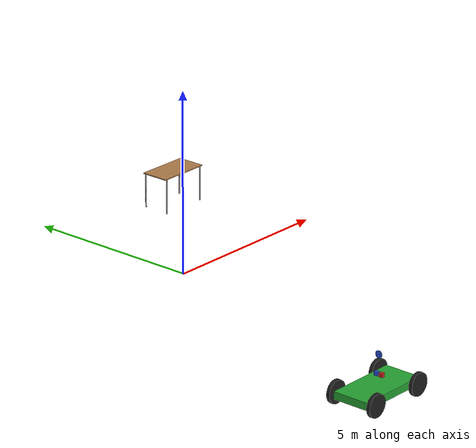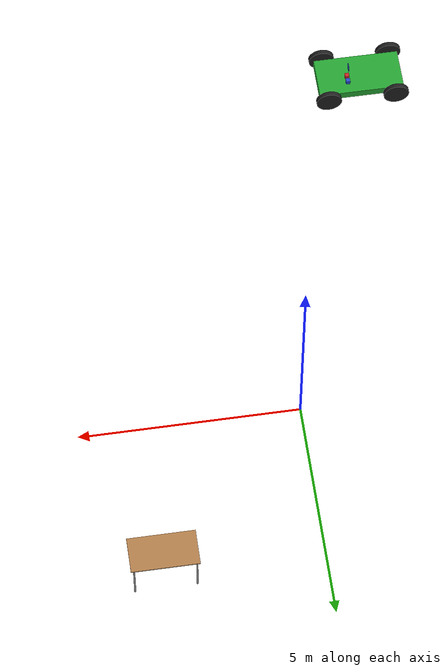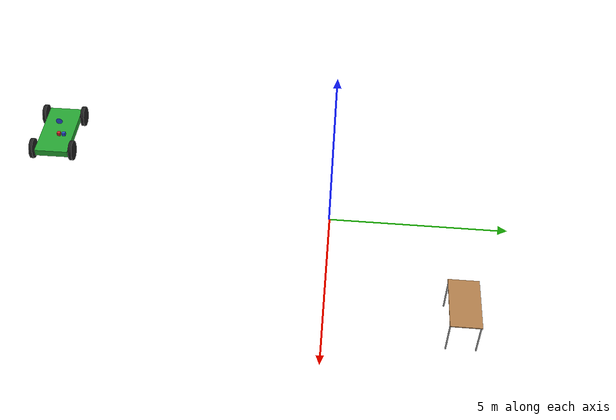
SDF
<sdf version="1.6">
 <world name="default">
  <light name="sun" type="directional">
   <pose>0 0 15 0 -0 0</pose>
   <diffuse>0.8 0.8 0.8 1</diffuse>
   <specular>0.2 0.2 0.2 1</specular>
   <attenuation>
    <range>1000</range>
    <constant>0.9</constant>
    <linear>0.01</linear>
    <quadratic>0.001</quadratic>
   </attenuation>
   <direction>-0.5 0.1 -0.9</direction>
  </light>
  <gravity>0 0 -9.8</gravity>
  <magnetic_field>6e-06 2.3e-05 -4.2e-05</magnetic_field>
  <atmosphere type="adiabatic"/>
  <physics name="default_physics" default="0" type="ode">
   <max_step_size>0.001</max_step_size>
   <real_time_factor>1</real_time_factor>
   <real_time_update_rate>1000</real_time_update_rate>
  </physics>
  <scene><ambient>0.4 0.4 0.4 1</ambient><background>0.7 0.7 0.7 1</background><shadows>1</shadows></scene>
  <spherical_coordinates>
   <surface_model>EARTH_WGS84</surface_model>
   <latitude_deg>0</latitude_deg>
   <longitude_deg>0</longitude_deg>
   <elevation>0</elevation>
   <heading_deg>0</heading_deg>
  </spherical_coordinates>
  <model name="car">
   <link name="chassis">
    <pose>0 0 0.3 0 -0 0</pose>
    <collision name="collision"><geometry><box><size>2 1 0.2</size></box></geometry></collision>
    <visual name="visual">
     <geometry><box><size>2 1 0.2</size></box></geometry>
     <material>
      <script><uri>file://media/materials/scripts/gazebo.material</uri><name>Gazebo/Green</name></script>
     </material>
    </visual>
    <inertial>
     <inertia><ixx>1</ixx><ixy>0</ixy><ixz>0</ixz><iyy>1</iyy><iyz>0</iyz><izz>1</izz></inertia>
     <mass>1</mass>
    </inertial>
   </link>
   <link name="front_left_wheel">
    <pose>0.8 0.6 0.3 -0 1.5707 1.5707</pose>
    <collision name="collision">
     <geometry><cylinder><radius>0.3</radius><length>0.1</length></cylinder></geometry>
    </collision>
    <visual name="visual">
     <geometry><cylinder><radius>0.3</radius><length>0.1</length></cylinder></geometry>
     <material>
      <script><uri>file://media/materials/scripts/gazebo.material</uri><name>Gazebo/Black</name></script>
     </material>
    </visual>
    <inertial>
     <inertia><ixx>1</ixx><ixy>0</ixy><ixz>0</ixz><iyy>1</iyy><iyz>0</iyz><izz>1</izz></inertia>
     <mass>1</mass>
    </inertial>
   </link>
   <link name="front_right_wheel">
    <pose>0.8 -0.6 0.3 -0 1.5707 1.5707</pose>
    <collision name="collision">
     <geometry><cylinder><radius>0.3</radius><length>0.1</length></cylinder></geometry>
    </collision>
    <visual name="visual">
     <geometry><cylinder><radius>0.3</radius><length>0.1</length></cylinder></geometry>
     <material>
      <script><uri>file://media/materials/scripts/gazebo.material</uri><name>Gazebo/Black</name></script>
     </material>
    </visual>
    <inertial>
     <inertia><ixx>1</ixx><ixy>0</ixy><ixz>0</ixz><iyy>1</iyy><iyz>0</iyz><izz>1</izz></inertia>
     <mass>1</mass>
    </inertial>
   </link>
   <link name="back_right_wheel">
    <pose>-0.8 -0.6 0.3 -0 1.5707 1.5707</pose>
    <collision name="collision">
     <geometry><cylinder><radius>0.3</radius><length>0.1</length></cylinder></geometry>
    </collision>
    <visual name="visual">
     <geometry><cylinder><radius>0.3</radius><length>0.1</length></cylinder></geometry>
     <material>
      <script><uri>file://media/materials/scripts/gazebo.material</uri><name>Gazebo/Black</name></script>
     </material>
    </visual>
    <inertial>
     <inertia><ixx>1</ixx><ixy>0</ixy><ixz>0</ixz><iyy>1</iyy><iyz>0</iyz><izz>1</izz></inertia>
     <mass>1</mass>
    </inertial>
   </link>
   <link name="back_left_wheel">
    <pose>-0.8 0.6 0.3 -0 1.5707 1.5707</pose>
    <collision name="collision">
     <geometry><cylinder><radius>0.3</radius><length>0.1</length></cylinder></geometry>
    </collision>
    <visual name="visual">
     <geometry><cylinder><radius>0.3</radius><length>0.1</length></cylinder></geometry>
     <material>
      <script><uri>file://media/materials/scripts/gazebo.material</uri><name>Gazebo/Black</name></script>
     </material>
    </visual>
    <inertial>
     <inertia><ixx>1</ixx><ixy>0</ixy><ixz>0</ixz><iyy>1</iyy><iyz>0</iyz><izz>1</izz></inertia>
     <mass>1</mass>
    </inertial>
   </link>
   <link name="gas_pedal">
    <pose>0.3 0.1 0.5 0 -0 0</pose>
    <collision name="collision"><geometry><box><size>0.1 0.1 0.1</size></box></geometry></collision>
    <visual name="visual">
     <geometry><box><size>0.1 0.1 0.1</size></box></geometry>
     <material>
      <script><uri>file://media/materials/scripts/gazebo.material</uri><name>Gazebo/Red</name></script>
     </material>
    </visual>
    <inertial>
     <inertia><ixx>1</ixx><ixy>0</ixy><ixz>0</ixz><iyy>1</iyy><iyz>0</iyz><izz>1</izz></inertia>
     <mass>1</mass>
    </inertial>
   </link>
   <link name="brake_pedal">
    <pose>0.3 0.25 0.5 0 -0 0</pose>
    <collision name="collision"><geometry><box><size>0.1 0.1 0.1</size></box></geometry></collision>
    <visual name="visual">
     <geometry><box><size>0.1 0.1 0.1</size></box></geometry>
     <material>
      <script><uri>file://media/materials/scripts/gazebo.material</uri><name>Gazebo/Blue</name></script>
     </material>
    </visual>
    <inertial>
     <inertia><ixx>1</ixx><ixy>0</ixy><ixz>0</ixz><iyy>1</iyy><iyz>0</iyz><izz>1</izz></inertia>
     <mass>1</mass>
    </inertial>
   </link>
   <link name="steering_wheel">
    <pose>0.3 0.2 1 0 1.5707 0</pose>
    <collision name="collision">
     <geometry><cylinder><radius>0.1</radius><length>0.01</length></cylinder></geometry>
    </collision>
    <visual name="visual">
     <geometry><cylinder><radius>0.1</radius><length>0.01</length></cylinder></geometry>
     <material>
      <script><uri>file://media/materials/scripts/gazebo.material</uri><name>Gazebo/Blue</name></script>
     </material>
    </visual>
    <inertial>
     <inertia><ixx>1</ixx><ixy>0</ixy><ixz>0</ixz><iyy>1</iyy><iyz>0</iyz><izz>1</izz></inertia>
     <mass>1</mass>
    </inertial>
   </link>
   <joint name="gas_joint" type="prismatic">
    <parent>chassis</parent>
    <child>gas_pedal</child>
    <axis>
     <xyz>1 0 0</xyz>
     <limit><lower>0</lower><upper>0.2</upper></limit>
     <use_parent_model_frame>1</use_parent_model_frame>
     <dynamics><spring_reference>0</spring_reference><spring_stiffness>0</spring_stiffness></dynamics>
    </axis>
   </joint>
   <joint name="brake_joint" type="prismatic">
    <parent>chassis</parent>
    <child>brake_pedal</child>
    <axis>
     <xyz>1 0 0</xyz>
     <limit><lower>0</lower><upper>0.2</upper></limit>
     <use_parent_model_frame>1</use_parent_model_frame>
     <dynamics><spring_reference>0</spring_reference><spring_stiffness>0</spring_stiffness></dynamics>
    </axis>
   </joint>
   <joint name="steering_joint" type="revolute">
    <parent>chassis</parent>
    <child>steering_wheel</child>
    <axis>
     <xyz>1 0 0</xyz>
     <limit><lower>-7.853</lower><upper>7.853</upper></limit>
     <use_parent_model_frame>1</use_parent_model_frame>
     <dynamics><spring_reference>0</spring_reference><spring_stiffness>0</spring_stiffness></dynamics>
    </axis>
   </joint>
   <joint name="front_left_joint" type="revolute2">
    <parent>chassis</parent>
    <child>front_left_wheel</child>
    <axis>
     <xyz>0 0 1</xyz>
     <limit><lower>6.84145e-06</lower><upper>6.84145e-06</upper></limit>
     <use_parent_model_frame>1</use_parent_model_frame>
     <dynamics><spring_reference>0</spring_reference><spring_stiffness>0</spring_stiffness></dynamics>
    </axis>
    <axis2>
     <xyz>0 1 0</xyz>
     <use_parent_model_frame>1</use_parent_model_frame>
     <dynamics><spring_reference>0</spring_reference><spring_stiffness>0</spring_stiffness></dynamics>
    </axis2>
    <physics><ode><limit><cfm>0</cfm><erp>0.9</erp></limit></ode></physics>
   </joint>
   <joint name="front_right_joint" type="revolute2">
    <parent>chassis</parent>
    <child>front_right_wheel</child>
    <axis>
     <xyz>0 0 1</xyz>
     <limit><lower>6.84145e-06</lower><upper>6.84145e-06</upper></limit>
     <use_parent_model_frame>1</use_parent_model_frame>
     <dynamics><spring_reference>0</spring_reference><spring_stiffness>0</spring_stiffness></dynamics>
    </axis>
    <axis2>
     <xyz>0 1 0</xyz>
     <use_parent_model_frame>1</use_parent_model_frame>
     <dynamics><spring_reference>0</spring_reference><spring_stiffness>0</spring_stiffness></dynamics>
    </axis2>
    <physics><ode><limit><cfm>0</cfm><erp>0.9</erp></limit></ode></physics>
   </joint>
   <joint name="back_right_joint" type="revolute2">
    <parent>chassis</parent>
    <child>back_right_wheel</child>
    <axis>
     <xyz>0 0 1</xyz>
     <limit><lower>0</lower><upper>0</upper></limit>
     <use_parent_model_frame>1</use_parent_model_frame>
     <dynamics><spring_reference>0</spring_reference><spring_stiffness>0</spring_stiffness></dynamics>
    </axis>
    <axis2>
     <xyz>0 1 0</xyz>
     <use_parent_model_frame>1</use_parent_model_frame>
     <dynamics><spring_reference>0</spring_reference><spring_stiffness>0</spring_stiffness></dynamics>
    </axis2>
    <physics><ode><limit><cfm>0</cfm><erp>0.9</erp></limit></ode></physics>
   </joint>
   <joint name="back_left_joint" type="revolute2">
    <parent>chassis</parent>
    <child>back_left_wheel</child>
    <axis>
     <xyz>0 0 1</xyz>
     <limit><lower>0</lower><upper>0</upper></limit>
     <use_parent_model_frame>1</use_parent_model_frame>
     <dynamics><spring_reference>0</spring_reference><spring_stiffness>0</spring_stiffness></dynamics>
    </axis>
    <axis2>
     <xyz>0 1 0</xyz>
     <use_parent_model_frame>1</use_parent_model_frame>
     <dynamics><spring_reference>0</spring_reference><spring_stiffness>0</spring_stiffness></dynamics>
    </axis2>
    <physics><ode><limit><cfm>0</cfm><erp>0.9</erp></limit></ode></physics>
   </joint>
   <plugin name="vehicle" filename="libVehiclePlugin.so">
    <front_left>front_left_joint</front_left>
    <front_right>front_right_joint</front_right>
    <back_left>back_left_joint</back_left>
    <back_right>back_right_joint</back_right>
    <gas>gas_joint</gas>
    <brake>brake_joint</brake>
    <steering>steering_joint</steering>
    <front_power>10</front_power>
    <rear_power>10</rear_power>
    <tire_angle_range>0.5</tire_angle_range>
    <max_speed>10</max_speed>
    <aero_load>0.1</aero_load>
   </plugin>
   <pose>-2.70271 -8.50932 -0.007676 -0.00027 0.000917 0.001046</pose>
  </model>
  <model name="table">
   <static>1</static>
   <link name="link">
    <collision name="surface">
     <pose>0 0 1 0 -0 0</pose>
     <geometry><box><size>1.5 0.8 0.03</size></box></geometry>
     <surface><friction><ode><mu>0.6</mu><mu2>0.6</mu2></ode></friction></surface>
    </collision>
    <visual name="visual1">
     <pose>0 0 1 0 -0 0</pose>
     <geometry><box><size>1.5 0.8 0.03</size></box></geometry>
     <material>
      <script><uri>file://media/materials/scripts/gazebo.material</uri><name>Gazebo/Wood</name></script>
     </material>
    </visual>
    <collision name="front_left_leg">
     <pose>0.68 0.38 0.5 0 -0 0</pose>
     <geometry><cylinder><radius>0.02</radius><length>1</length></cylinder></geometry>
    </collision>
    <visual name="front_left_leg">
     <pose>0.68 0.38 0.5 0 -0 0</pose>
     <geometry><cylinder><radius>0.02</radius><length>1</length></cylinder></geometry>
     <material>
      <script><uri>file://media/materials/scripts/gazebo.material</uri><name>Gazebo/Grey</name></script>
     </material>
    </visual>
    <collision name="front_right_leg">
     <pose>0.68 -0.38 0.5 0 -0 0</pose>
     <geometry><cylinder><radius>0.02</radius><length>1</length></cylinder></geometry>
    </collision>
    <visual name="front_right_leg">
     <pose>0.68 -0.38 0.5 0 -0 0</pose>
     <geometry><cylinder><radius>0.02</radius><length>1</length></cylinder></geometry>
     <material>
      <script><uri>file://media/materials/scripts/gazebo.material</uri><name>Gazebo/Grey</name></script>
     </material>
    </visual>
    <collision name="back_right_leg">
     <pose>-0.68 -0.38 0.5 0 -0 0</pose>
     <geometry><cylinder><radius>0.02</radius><length>1</length></cylinder></geometry>
    </collision>
    <visual name="back_right_leg">
     <pose>-0.68 -0.38 0.5 0 -0 0</pose>
     <geometry><cylinder><radius>0.02</radius><length>1</length></cylinder></geometry>
     <material>
      <script><uri>file://media/materials/scripts/gazebo.material</uri><name>Gazebo/Grey</name></script>
     </material>
    </visual>
    <collision name="back_left_leg">
     <pose>-0.68 0.38 0.5 0 -0 0</pose>
     <geometry><cylinder><radius>0.02</radius><length>1</length></cylinder></geometry>
    </collision>
    <visual name="back_left_leg">
     <pose>-0.68 0.38 0.5 0 -0 0</pose>
     <geometry><cylinder><radius>0.02</radius><length>1</length></cylinder></geometry>
     <material>
      <script><uri>file://media/materials/scripts/gazebo.material</uri><name>Gazebo/Grey</name></script>
     </material>
    </visual>
   </link>
   <pose>3.53711 3.51684 0 0 -0 0</pose>
  </model>
 </world>
</sdf>
